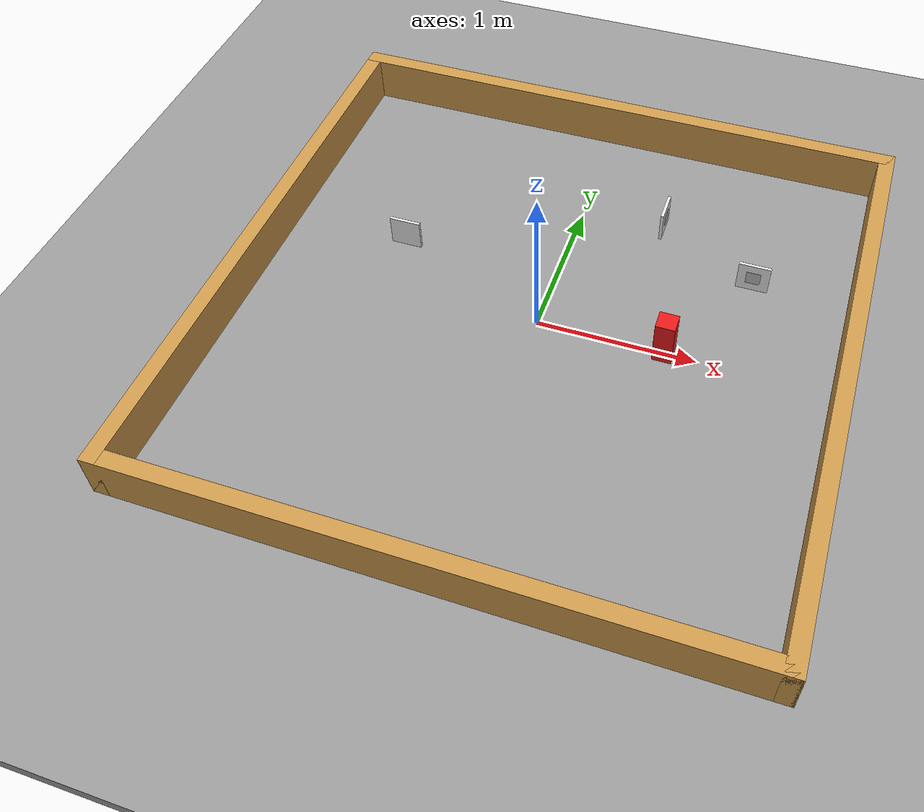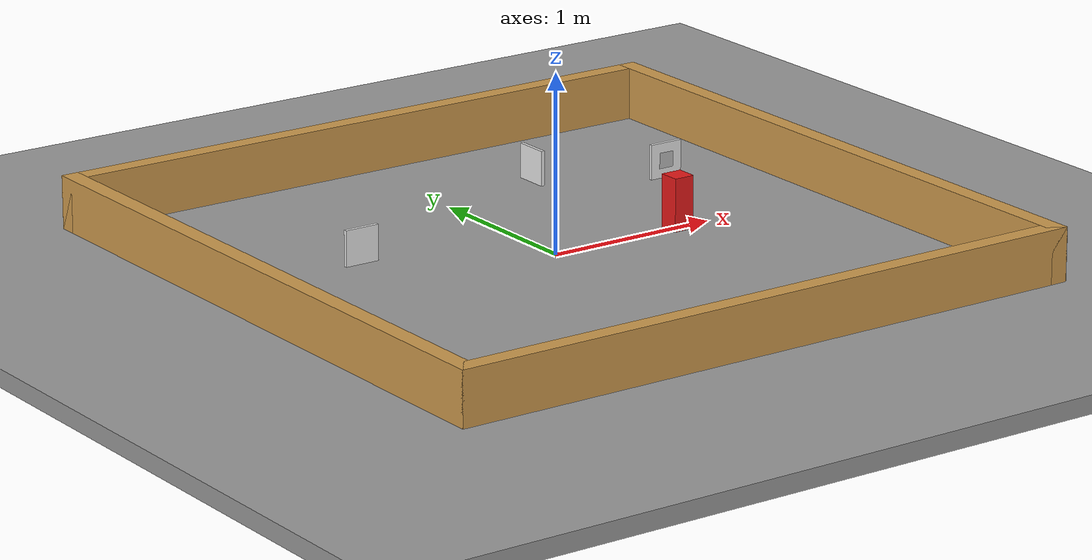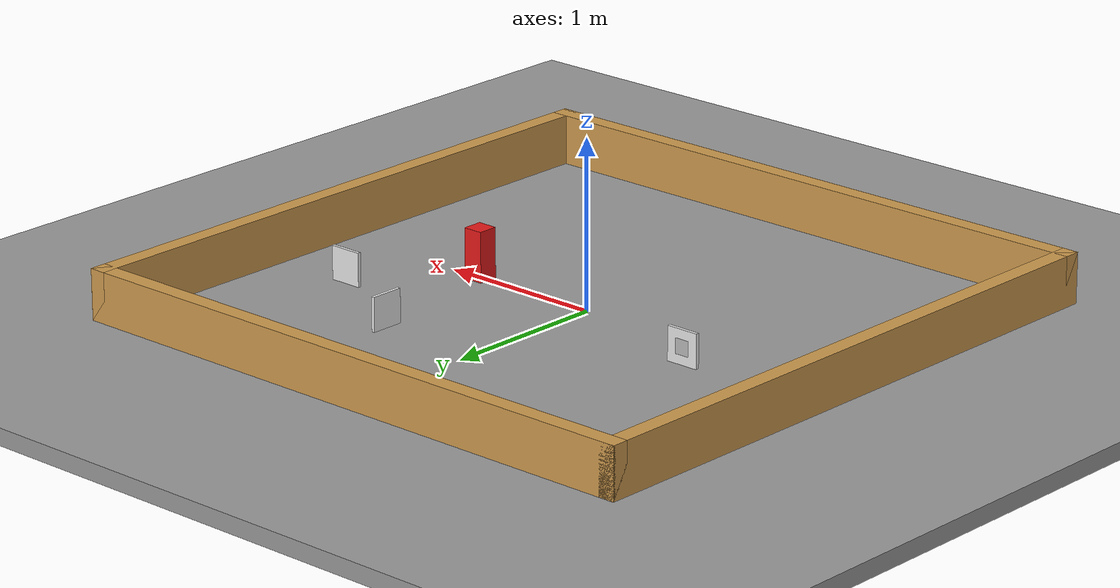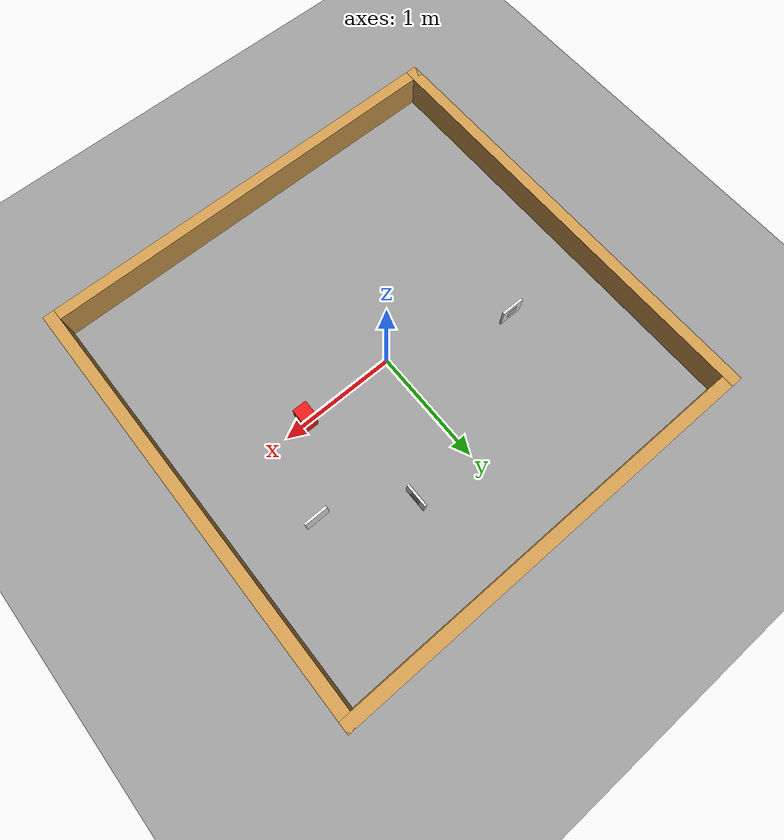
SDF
<?xml version="1.0"?>
<sdf version="1.6">
  <world name="aigc_test_world">

    <!-- Inline directional light (avoids online model download). -->
    <light name="sun" type="directional">
      <pose>0 0 10 0 0 0</pose>
      <diffuse>0.7 0.7 0.7 1</diffuse>
      <specular>0.1 0.1 0.1 1</specular>
      <direction>0 0 -1</direction>
      <cast_shadows>false</cast_shadows>
    </light>

    <!-- Inline ground plane (top surface at z = 0). -->
    <model name="ground_plane">
      <static>true</static>
      <link name="link">
        <collision name="collision">
          <geometry>
            <box>
              <size>20 20 0.1</size>
            </box>
          </geometry>
        </collision>
        <visual name="visual">
          <geometry>
            <box>
              <size>20 20 0.1</size>
            </box>
          </geometry>
          <material>
            <ambient>0.5 0.5 0.5 1</ambient>
            <diffuse>0.6 0.6 0.6 1</diffuse>
          </material>
        </visual>
      </link>
      <pose>0 0 -0.05 0 0 0</pose>
    </model>

    <!--
      Walls: inner clear area 3.6 m x 3.6 m.
      Wall thickness 0.10 m, wall height 0.30 m.
      Inner faces at +/-1.8 m, outer faces at +/-1.9 m.
    -->
    <model name="wall_front">
      <static>true</static>
      <link name="link">
        <collision name="collision">
          <geometry>
            <box>
              <size>0.10 3.80 0.30</size>
            </box>
          </geometry>
        </collision>
        <visual name="visual">
          <geometry>
            <box>
              <size>0.10 3.80 0.30</size>
            </box>
          </geometry>
          <material>
            <ambient>0.7 0.5 0.2 1</ambient>
            <diffuse>0.8 0.6 0.3 1</diffuse>
          </material>
        </visual>
      </link>
      <pose>1.85 0 0.15 0 0 0</pose>
    </model>

    <model name="wall_back">
      <static>true</static>
      <link name="link">
        <collision name="collision">
          <geometry>
            <box>
              <size>0.10 3.80 0.30</size>
            </box>
          </geometry>
        </collision>
        <visual name="visual">
          <geometry>
            <box>
              <size>0.10 3.80 0.30</size>
            </box>
          </geometry>
          <material>
            <ambient>0.7 0.5 0.2 1</ambient>
            <diffuse>0.8 0.6 0.3 1</diffuse>
          </material>
        </visual>
      </link>
      <pose>-1.85 0 0.15 0 0 0</pose>
    </model>

    <model name="wall_left">
      <static>true</static>
      <link name="link">
        <collision name="collision">
          <geometry>
            <box>
              <size>3.80 0.10 0.30</size>
            </box>
          </geometry>
        </collision>
        <visual name="visual">
          <geometry>
            <box>
              <size>3.80 0.10 0.30</size>
            </box>
          </geometry>
          <material>
            <ambient>0.7 0.5 0.2 1</ambient>
            <diffuse>0.8 0.6 0.3 1</diffuse>
          </material>
        </visual>
      </link>
      <pose>0 1.85 0.15 0 0 0</pose>
    </model>

    <model name="wall_right">
      <static>true</static>
      <link name="link">
        <collision name="collision">
          <geometry>
            <box>
              <size>3.80 0.10 0.30</size>
            </box>
          </geometry>
        </collision>
        <visual name="visual">
          <geometry>
            <box>
              <size>3.80 0.10 0.30</size>
            </box>
          </geometry>
          <material>
            <ambient>0.7 0.5 0.2 1</ambient>
            <diffuse>0.8 0.6 0.3 1</diffuse>
          </material>
        </visual>
      </link>
      <pose>0 -1.85 0.15 0 0 0</pose>
    </model>

    <!-- Colored test object placed in front of the robot spawn point (0, 0). -->
    <model name="test_object">
      <static>true</static>
      <link name="link">
        <collision name="collision">
          <geometry>
            <box>
              <size>0.12 0.12 0.30</size>
            </box>
          </geometry>
        </collision>
        <visual name="visual">
          <geometry>
            <box>
              <size>0.12 0.12 0.30</size>
            </box>
          </geometry>
          <material>
            <ambient>0.9 0.1 0.1 1</ambient>
            <diffuse>0.9 0.1 0.1 1</diffuse>
          </material>
        </visual>
      </link>
      <pose>0.8 0 0.15 0 0 0</pose>
    </model>

    <model name="ar_target_0">
      <static>true</static>
      <link name="link">
        <collision name="collision">
          <geometry>
            <box>
              <size>0.20 0.02 0.20</size>
            </box>
          </geometry>
        </collision>
        <visual name="backboard">
          <geometry>
            <box>
              <size>0.20 0.02 0.20</size>
            </box>
          </geometry>
          <material>
            <ambient>0.9 0.9 0.9 1</ambient>
            <diffuse>0.9 0.9 0.9 1</diffuse>
          </material>
        </visual>
        <visual name="marker">
          <pose>0 -0.011 0 1.57079632679 0 0</pose>
          <geometry>
            <mesh>
              <uri>model://aigc_sim/meshes/marker_0.dae</uri>
            </mesh>
          </geometry>
        </visual>
      </link>
      <pose>1.2 0.65 0.15 0 0 0</pose>
    </model>

    <model name="ar_target_1">
      <static>true</static>
      <link name="link">
        <collision name="collision">
          <geometry>
            <box>
              <size>0.02 0.20 0.20</size>
            </box>
          </geometry>
        </collision>
        <visual name="backboard">
          <geometry>
            <box>
              <size>0.02 0.20 0.20</size>
            </box>
          </geometry>
          <material>
            <ambient>0.9 0.9 0.9 1</ambient>
            <diffuse>0.9 0.9 0.9 1</diffuse>
          </material>
        </visual>
        <visual name="marker">
          <pose>0.011 0 0 1.57079632679 0 1.57079632679</pose>
          <geometry>
            <mesh>
              <uri>model://aigc_sim/meshes/marker_1.dae</uri>
            </mesh>
          </geometry>
        </visual>
      </link>
      <pose>0.55 1.0 0.15 0 0 0</pose>
    </model>

    <model name="ar_target_2">
      <static>true</static>
      <link name="link">
        <collision name="collision">
          <geometry>
            <box>
              <size>0.20 0.02 0.20</size>
            </box>
          </geometry>
        </collision>
        <visual name="backboard">
          <geometry>
            <box>
              <size>0.20 0.02 0.20</size>
            </box>
          </geometry>
          <material>
            <ambient>0.9 0.9 0.9 1</ambient>
            <diffuse>0.9 0.9 0.9 1</diffuse>
          </material>
        </visual>
        <visual name="marker">
          <pose>0 0.011 0 1.57079632679 0 3.14159265359</pose>
          <geometry>
            <mesh>
              <uri>model://aigc_sim/meshes/marker_2.dae</uri>
            </mesh>
          </geometry>
        </visual>
      </link>
      <pose>-1.0 0.35 0.15 0 0 0</pose>
    </model>

  </world>
</sdf>
